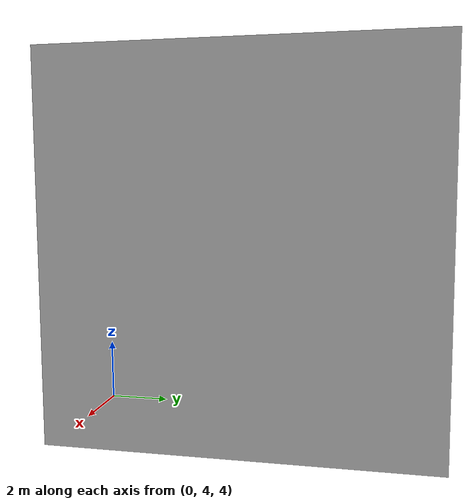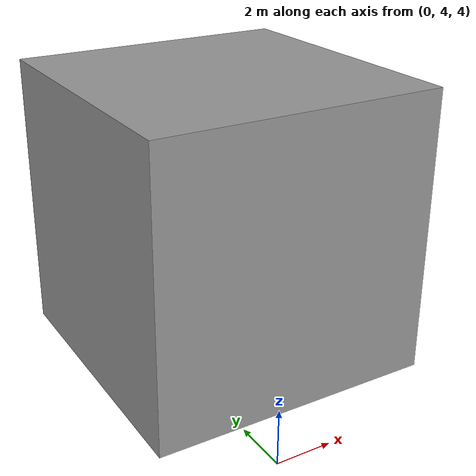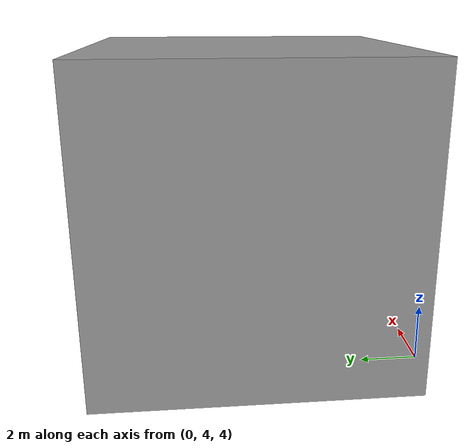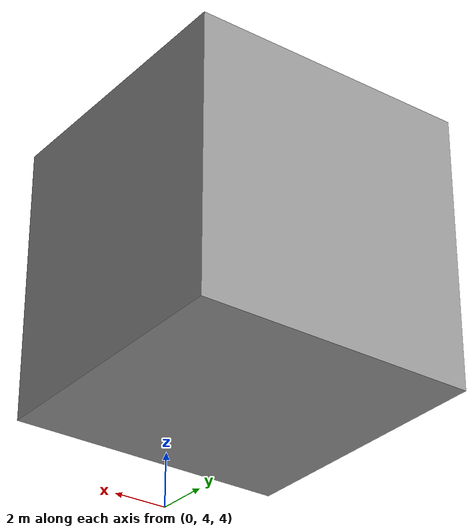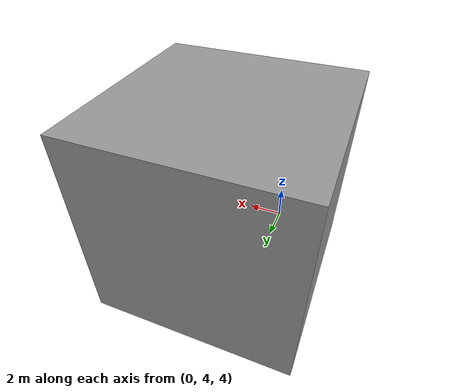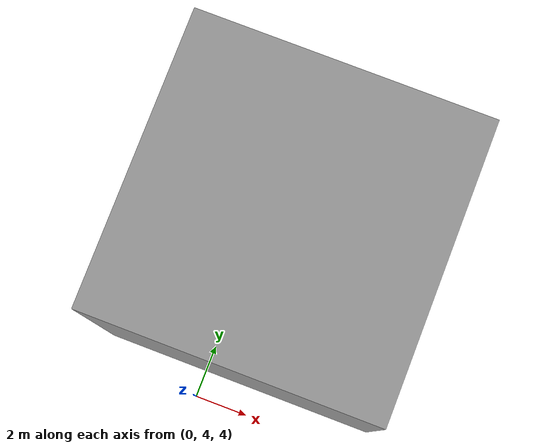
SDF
<?xml version="1.0" ?>
<sdf version="1.5">
  <model name="grey_wall">
    <static>true</static>
    <link name="link">
      <pose>1.4 10 10 0 0 0</pose>
      <collision name="collision">
        <geometry>
          <box>
            <size>10 10 10</size>
          </box>
        </geometry>
      </collision>
      <visual name="visual">
        <cast_shadows>false</cast_shadows>
        <geometry>
          <box>
            <size>10 10 10</size>
          </box>
        </geometry>
        <material>
          <script>
            <uri>model://grey_wall/materials/scripts</uri>
            <uri>model://grey_wall/materials/textures</uri>
            <name>vrc/grey_wall_design</name>
          </script>
        </material>
      </visual>
    </link>
  </model>
</sdf>
